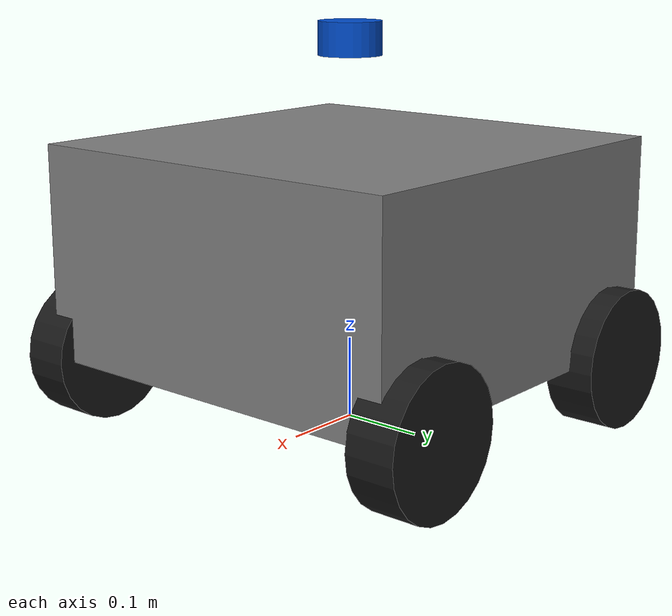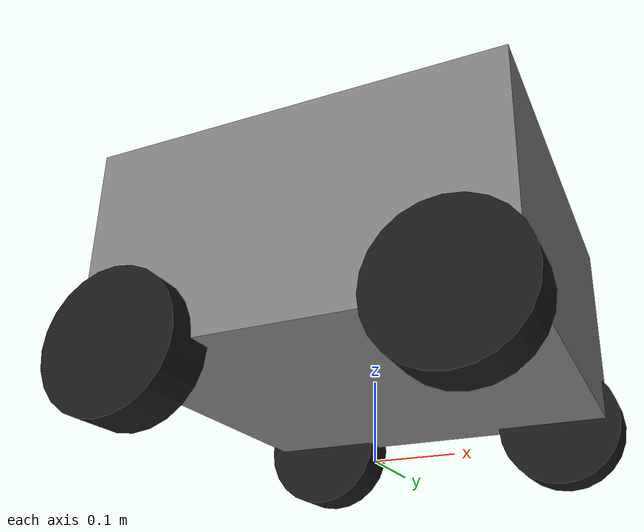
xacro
<?xml version="1.0"?>
<robot xmlns:xacro="http://www.ros.org/wiki/xacro" name="robo_4_rodas">

  <xacro:property name="wheel_radius"     value="0.085"/>
  <xacro:property name="wheel_width"      value="0.06"/>
  <xacro:property name="track_width"      value="0.50"/>   <!-- bitola: distância entre centros L-R -->
  <xacro:property name="wheelbase"        value="0.37"/>   <!-- entre-eixos: distância entre eixos F-R -->

  <xacro:property name="body_length"      value="0.50"/>
  <xacro:property name="body_width"       value="0.50"/>
  <xacro:property name="body_height"      value="0.26"/>

  <xacro:property name="lidar_x"          value="0.0"/>
  <xacro:property name="lidar_z"          value="0.12"/>

  <xacro:property name="imu_z"            value="0.02"/>
  <xacro:property name="flow_z"           value="-0.095"/>

  <!-- ======= base_footprint ======= -->
  <link name="base_footprint"/>

  <joint name="base_footprint_joint" type="fixed">
    <parent link="base_footprint"/>
    <child link="base_link"/>
    <origin xyz="0 0 ${wheel_radius + body_height/2}" rpy="0 0 0"/>
  </joint>

  <!-- ======= base_link ======= -->
  <link name="base_link">
    <visual>
      <geometry>
        <box size="${body_length} ${body_width} ${body_height}"/>
      </geometry>
      <material name="grey">
        <color rgba="0.5 0.5 0.5 1.0"/>
      </material>
    </visual>
    <collision>
      <geometry>
        <box size="${body_length} ${body_width} ${body_height}"/>
      </geometry>
    </collision>
    <inertial>
      <mass value="15.46"/>
      <inertia ixx="0.41" ixy="0" ixz="0" iyy="0.41" iyz="0" izz="0.64"/>
    </inertial>
  </link>

  <!-- ======= Macro de roda ======= -->
  <xacro:macro name="wheel" params="name x y">
    <joint name="${name}_joint" type="continuous">
      <parent link="base_link"/>
      <child link="${name}"/>
      <origin xyz="${x} ${y} ${-body_height/2}" rpy="${-pi/2} 0 0"/>
      <axis xyz="0 0 1"/>
    </joint>
    <link name="${name}">
      <visual>
        <geometry>
          <cylinder radius="${wheel_radius}" length="${wheel_width}"/>
        </geometry>
        <material name="black">
          <color rgba="0.1 0.1 0.1 1.0"/>
        </material>
      </visual>
      <collision>
        <geometry>
          <cylinder radius="${wheel_radius}" length="${wheel_width}"/>
        </geometry>
      </collision>
      <inertial>
        <mass value="1.5"/>
        <inertia ixx="0.005" ixy="0" ixz="0" iyy="0.005" iyz="0" izz="0.009"/>
      </inertial>
    </link>
  </xacro:macro>

  <xacro:wheel name="front_left_wheel"  x="${ wheelbase/2}" y="${ track_width/2}"/>
  <xacro:wheel name="front_right_wheel" x="${ wheelbase/2}" y="${-track_width/2}"/>
  <xacro:wheel name="rear_left_wheel"   x="${-wheelbase/2}" y="${ track_width/2}"/>
  <xacro:wheel name="rear_right_wheel"  x="${-wheelbase/2}" y="${-track_width/2}"/>

  <!-- ======= LiDAR (FHL-LD20) ======= -->
  <joint name="laser_joint" type="fixed">
    <parent link="base_link"/>
    <child link="base_laser"/>
    <origin xyz="${lidar_x} 0 ${body_height/2 + lidar_z}" rpy="0 0 0"/>
  </joint>
  <link name="base_laser">
    <visual>
      <geometry>
        <cylinder radius="0.038" length="0.04"/>
      </geometry>
      <material name="blue">
        <color rgba="0.0 0.3 0.8 1.0"/>
      </material>
    </visual>
    <collision>
      <geometry>
        <cylinder radius="0.038" length="0.04"/>
      </geometry>
    </collision>
    <inertial>
      <mass value="0.1"/>
      <inertia ixx="0.0001" ixy="0" ixz="0" iyy="0.0001" iyz="0" izz="0.0001"/>
    </inertial>
  </link>

  <!-- ======= IMU #1 (MPU6050 — gyro/accel, sem mag) ======= -->
  <joint name="imu_joint" type="fixed">
    <parent link="base_link"/>
    <child link="imu_link"/>
    <origin xyz="0 0 ${imu_z}" rpy="0 0 0"/>
  </joint>
  <link name="imu_link">
    <visual>
      <geometry>
        <box size="0.02 0.02 0.005"/>
      </geometry>
      <material name="red">
        <color rgba="0.8 0.1 0.1 1.0"/>
      </material>
    </visual>
    <inertial>
      <mass value="0.01"/>
      <inertia ixx="1e-5" ixy="0" ixz="0" iyy="1e-5" iyz="0" izz="1e-5"/>
    </inertial>
  </link>

  <joint name="imu2_joint" type="fixed">
    <parent link="base_link"/>
    <child link="imu2_link"/>
    <origin xyz="0.03 0 ${imu_z}" rpy="0 0 0"/>
  </joint>
  <link name="imu2_link">
    <visual>
      <geometry>
        <box size="0.02 0.02 0.005"/>
      </geometry>
      <material name="orange">
        <color rgba="0.9 0.5 0.1 1.0"/>
      </material>
    </visual>
    <inertial>
      <mass value="0.01"/>
      <inertia ixx="1e-5" ixy="0" ixz="0" iyy="1e-5" iyz="0" izz="1e-5"/>
    </inertial>
  </link>

  <!-- ======= Optical flow (PMW3901) — olhando pro chão ======= -->
  <joint name="flow_joint" type="fixed">
    <parent link="base_link"/>
    <child link="flow_link"/>
    <origin xyz="0 0 ${flow_z}" rpy="0 ${pi} 0"/>
  </joint>
  <link name="flow_link">
    <visual>
      <geometry>
        <box size="0.02 0.02 0.005"/>
      </geometry>
      <material name="green">
        <color rgba="0.1 0.7 0.1 1.0"/>
      </material>
    </visual>
    <inertial>
      <mass value="0.01"/>
      <inertia ixx="1e-5" ixy="0" ixz="0" iyy="1e-5" iyz="0" izz="1e-5"/>
    </inertial>
  </link>

</robot>
